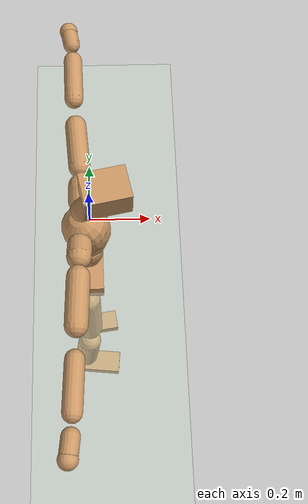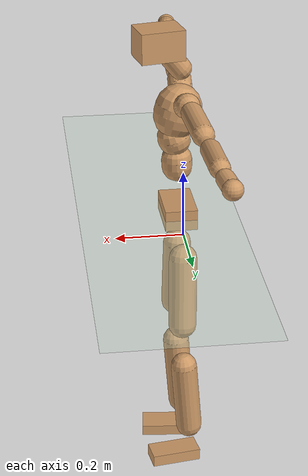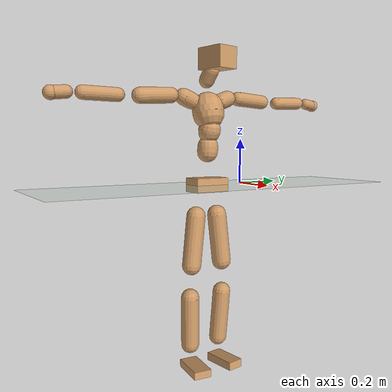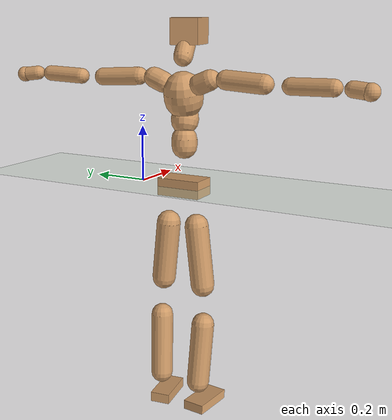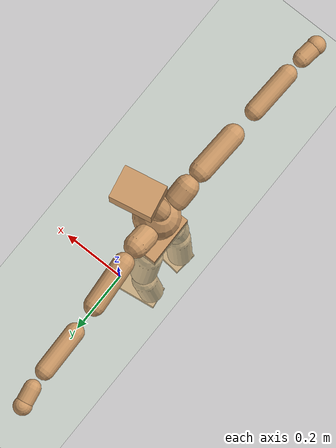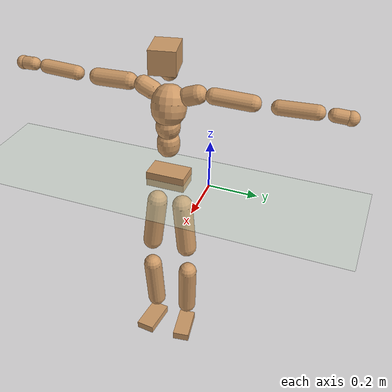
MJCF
<mujoco model="humanoid">
  <compiler coordinate="local" angle="radian"/>
  <default>
    <joint damping="0.0" armature="0.01" stiffness="0.0" limited="true"/>
    <geom conaffinity="1" condim="3" contype="7" margin="0.001" rgba="0.8 0.6 .4 1"/>
  </default>
  <asset>
    <texture type="skybox" builtin="gradient" rgb1=".4 .5 .6" rgb2="0 0 0" width="100" height="100"/>
    <texture builtin="flat" height="1278" mark="cross" markrgb="1 1 1" name="texgeom" random="0.01" rgb1="0.8 0.6 0.4" rgb2="0.8 0.6 0.4" type="cube" width="127"/>
    <texture builtin="checker" height="100" name="texplane" rgb1="0 0 0" rgb2="0.8 0.8 0.8" type="2d" width="100"/>
    <material name="MatPlane" reflectance="0.5" shininess="1" specular="1" texrepeat="60 60" texture="texplane"/>
    <material name="geom" texture="texgeom" texuniform="true"/>
  </asset>
  <worldbody>
    <light cutoff="100" diffuse="1 1 1" dir="-0 0 -1.3" directional="true" exponent="1" pos="0 0 1.3" specular=".1 .1 .1"/>
    <geom conaffinity="1" condim="3" name="floor" pos="0 0 0" rgba="0.8 0.9 0.8 1" size="100 100 .2" type="plane" material="MatPlane"/>
    <body name="Pelvis" pos="-0.0019 -0.1756 0.0084">
      <freejoint name="Pelvis"/>
      <geom type="box" contype="1" conaffinity="1" density="500" pos="-0.0055 -0.0001 -0.0109" size="0.049 0.0808 0.0315" quat="1.0000 0.0000 0.0000 0.0062" name="Pelvis"/>
      <body name="L_Hip" pos="-0.0161 0.0493 -0.0773">
        <joint name="L_Hip_x" type="hinge" pos="0 0 0" axis="1 0 0" stiffness="800" damping="80" armature="0.02" range="-180.0000 180.0000"/>
        <joint name="L_Hip_y" type="hinge" pos="0 0 0" axis="0 1 0" stiffness="800" damping="80" armature="0.02" range="-180.0000 180.0000"/>
        <joint name="L_Hip_z" type="hinge" pos="0 0 0" axis="0 0 1" stiffness="800" damping="80" armature="0.02" range="-180.0000 180.0000"/>
        <geom type="capsule" contype="1" conaffinity="1" density="500" fromto="0.0015 0.0080 -0.0731 0.0059 0.0319 -0.2923" size="0.0435" name="L_Hip"/>
        <body name="L_Knee" pos="0.0074 0.0398 -0.3654">
          <joint name="L_Knee_x" type="hinge" pos="0 0 0" axis="1 0 0" stiffness="800" damping="80" armature="0.02" range="-180.0000 180.0000"/>
          <joint name="L_Knee_y" type="hinge" pos="0 0 0" axis="0 1 0" stiffness="800" damping="80" armature="0.02" range="-180.0000 180.0000"/>
          <joint name="L_Knee_z" type="hinge" pos="0 0 0" axis="0 0 1" stiffness="800" damping="80" armature="0.02" range="-180.0000 180.0000"/>
          <geom type="capsule" contype="1" conaffinity="1" density="500" fromto="-0.0062 -0.0025 -0.0764 -0.0248 -0.0101 -0.3057" size="0.041" name="L_Knee"/>
          <body name="L_Ankle" pos="-0.0309 -0.0127 -0.3821">
            <joint name="L_Ankle_x" type="hinge" pos="0 0 0" axis="1 0 0" stiffness="800" damping="80" armature="0.02" range="-180.0000 180.0000"/>
            <joint name="L_Ankle_y" type="hinge" pos="0 0 0" axis="0 1 0" stiffness="800" damping="80" armature="0.02" range="-180.0000 180.0000"/>
            <joint name="L_Ankle_z" type="hinge" pos="0 0 0" axis="0 0 1" stiffness="800" damping="80" armature="0.02" range="-180.0000 180.0000"/>
            <geom type="box" contype="1" conaffinity="1" density="500" pos="0.0555 0.0081 -0.0264" size="0.0777 0.0369 0.0188" quat="0.9974 0.0000 0.0000 0.0723" name="L_Ankle"/>
            <body name="L_Toe" pos="0.1109 0.0162 -0.0528">
              <joint name="L_Toe_x" type="hinge" pos="0 0 0" axis="1 0 0" stiffness="500" damping="50" armature="0.02" range="-180.0000 180.0000"/>
              <joint name="L_Toe_y" type="hinge" pos="0 0 0" axis="0 1 0" stiffness="500" damping="50" armature="0.02" range="-180.0000 180.0000"/>
              <joint name="L_Toe_z" type="hinge" pos="0 0 0" axis="0 0 1" stiffness="500" damping="50" armature="0.02" range="-180.0000 180.0000"/>
              <geom type="box" contype="1" conaffinity="1" density="500" pos="0.0000 0.0000 0.0278" size="0.0007 0.0019 0.001" quat="0.9968 0.0000 0.0000 0.0797" name="L_Toe"/>
            </body>
          </body>
        </body>
      </body>
      <body name="R_Hip" pos="-0.012 -0.0478 -0.0755">
        <joint name="R_Hip_x" type="hinge" pos="0 0 0" axis="1 0 0" stiffness="800" damping="80" armature="0.02" range="-180.0000 180.0000"/>
        <joint name="R_Hip_y" type="hinge" pos="0 0 0" axis="0 1 0" stiffness="800" damping="80" armature="0.02" range="-180.0000 180.0000"/>
        <joint name="R_Hip_z" type="hinge" pos="0 0 0" axis="0 0 1" stiffness="800" damping="80" armature="0.02" range="-180.0000 180.0000"/>
        <geom type="capsule" contype="1" conaffinity="1" density="500" fromto="0.0010 -0.0084 -0.0747 0.0041 -0.0337 -0.2987" size="0.043" name="R_Hip"/>
        <body name="R_Knee" pos="0.0051 -0.0422 -0.3733">
          <joint name="R_Knee_x" type="hinge" pos="0 0 0" axis="1 0 0" stiffness="800" damping="80" armature="0.02" range="-180.0000 180.0000"/>
          <joint name="R_Knee_y" type="hinge" pos="0 0 0" axis="0 1 0" stiffness="800" damping="80" armature="0.02" range="-180.0000 180.0000"/>
          <joint name="R_Knee_z" type="hinge" pos="0 0 0" axis="0 0 1" stiffness="800" damping="80" armature="0.02" range="-180.0000 180.0000"/>
          <geom type="capsule" contype="1" conaffinity="1" density="500" fromto="-0.0058 0.0032 -0.0764 -0.0231 0.0129 -0.3055" size="0.0417" name="R_Knee"/>
          <body name="R_Ankle" pos="-0.0289 0.0161 -0.3819">
            <joint name="R_Ankle_x" type="hinge" pos="0 0 0" axis="1 0 0" stiffness="800" damping="80" armature="0.02" range="-180.0000 180.0000"/>
            <joint name="R_Ankle_y" type="hinge" pos="0 0 0" axis="0 1 0" stiffness="800" damping="80" armature="0.02" range="-180.0000 180.0000"/>
            <joint name="R_Ankle_z" type="hinge" pos="0 0 0" axis="0 0 1" stiffness="800" damping="80" armature="0.02" range="-180.0000 180.0000"/>
            <geom type="box" contype="1" conaffinity="1" density="500" pos="0.0563 -0.0056 -0.0214" size="0.0799 0.0409 0.0174" quat="0.9988 0.0000 0.0000 -0.0494" name="R_Ankle"/>
            <body name="R_Toe" pos="0.1127 -0.0112 -0.0429">
              <joint name="R_Toe_x" type="hinge" pos="0 0 0" axis="1 0 0" stiffness="500" damping="50" armature="0.02" range="-180.0000 180.0000"/>
              <joint name="R_Toe_y" type="hinge" pos="0 0 0" axis="0 1 0" stiffness="500" damping="50" armature="0.02" range="-180.0000 180.0000"/>
              <joint name="R_Toe_z" type="hinge" pos="0 0 0" axis="0 0 1" stiffness="500" damping="50" armature="0.02" range="-180.0000 180.0000"/>
              <geom type="box" contype="1" conaffinity="1" density="500" pos="0.0000 0.0000 0.0232" size="0.0008 0.002 0.001" quat="0.9992 0.0000 0.0000 -0.0399" name="R_Toe"/>
            </body>
          </body>
        </body>
      </body>
      <body name="Torso" pos="-0.0048 -0.0018 0.0875">
        <joint name="Torso_x" type="hinge" pos="0 0 0" axis="1 0 0" stiffness="1000" damping="100" armature="0.02" range="-180.0000 180.0000"/>
        <joint name="Torso_y" type="hinge" pos="0 0 0" axis="0 1 0" stiffness="1000" damping="100" armature="0.02" range="-180.0000 180.0000"/>
        <joint name="Torso_z" type="hinge" pos="0 0 0" axis="0 0 1" stiffness="1000" damping="100" armature="0.02" range="-180.0000 180.0000"/>
        <geom type="capsule" contype="1" conaffinity="1" density="500" fromto="0.0033 0.0019 0.0715 0.0022 0.0012 0.0477" size="0.0461" name="Torso"/>
        <body name="Spine" pos="0.0056 0.0031 0.1192">
          <joint name="Spine_x" type="hinge" pos="0 0 0" axis="1 0 0" stiffness="1000" damping="100" armature="0.02" range="-180.0000 180.0000"/>
          <joint name="Spine_y" type="hinge" pos="0 0 0" axis="0 1 0" stiffness="1000" damping="100" armature="0.02" range="-180.0000 180.0000"/>
          <joint name="Spine_z" type="hinge" pos="0 0 0" axis="0 0 1" stiffness="1000" damping="100" armature="0.02" range="-180.0000 180.0000"/>
          <geom type="capsule" contype="1" conaffinity="1" density="500" fromto="0.0076 0.0016 0.0259 0.0050 0.0010 0.0173" size="0.0492" name="Spine"/>
          <body name="Chest" pos="0.0126 0.0026 0.0432">
            <joint name="Chest_x" type="hinge" pos="0 0 0" axis="1 0 0" stiffness="1000" damping="100" armature="0.02" range="-180.0000 180.0000"/>
            <joint name="Chest_y" type="hinge" pos="0 0 0" axis="0 1 0" stiffness="1000" damping="100" armature="0.02" range="-180.0000 180.0000"/>
            <joint name="Chest_z" type="hinge" pos="0 0 0" axis="0 0 1" stiffness="1000" damping="100" armature="0.02" range="-180.0000 180.0000"/>
            <geom type="capsule" contype="1" conaffinity="1" density="500" fromto="-0.0205 -0.0018 0.0762 -0.0137 -0.0012 0.0508" size="0.0697" name="Chest"/>
            <body name="Neck" pos="-0.035 -0.0053 0.1821">
              <joint name="Neck_x" type="hinge" pos="0 0 0" axis="1 0 0" stiffness="500" damping="50" armature="0.02" range="-180.0000 180.0000"/>
              <joint name="Neck_y" type="hinge" pos="0 0 0" axis="0 1 0" stiffness="500" damping="50" armature="0.02" range="-180.0000 180.0000"/>
              <joint name="Neck_z" type="hinge" pos="0 0 0" axis="0 0 1" stiffness="500" damping="50" armature="0.02" range="-180.0000 180.0000"/>
              <geom type="capsule" contype="1" conaffinity="1" density="500" fromto="0.0099 0.0017 0.0128 0.0395 0.0067 0.0513" size="0.0336" name="Neck"/>
              <body name="Head" pos="0.0493 0.0084 0.0642">
                <joint name="Head_x" type="hinge" pos="0 0 0" axis="1 0 0" stiffness="500" damping="50" armature="0.02" range="-180.0000 180.0000"/>
                <joint name="Head_y" type="hinge" pos="0 0 0" axis="0 1 0" stiffness="500" damping="50" armature="0.02" range="-180.0000 180.0000"/>
                <joint name="Head_z" type="hinge" pos="0 0 0" axis="0 0 1" stiffness="500" damping="50" armature="0.02" range="-180.0000 180.0000"/>
                <geom type="box" contype="1" conaffinity="1" density="500" pos="0.0257 0.0052 0.0331" size="0.0662 0.0502 0.0455" quat="0.9950 0.0000 0.0000 0.0995" name="Head"/>
              </body>
            </body>
            <body name="L_Thorax" pos="-0.0326 0.0547 0.0998">
              <joint name="L_Thorax_x" type="hinge" pos="0 0 0" axis="1 0 0" stiffness="500" damping="50" armature="0.02" range="-180.0000 180.0000"/>
              <joint name="L_Thorax_y" type="hinge" pos="0 0 0" axis="0 1 0" stiffness="500" damping="50" armature="0.02" range="-180.0000 180.0000"/>
              <joint name="L_Thorax_z" type="hinge" pos="0 0 0" axis="0 0 1" stiffness="500" damping="50" armature="0.02" range="-180.0000 180.0000"/>
              <geom type="capsule" contype="1" conaffinity="1" density="500" fromto="0.0004 0.0134 0.0053 0.0015 0.0537 0.0212" size="0.0367" name="L_Thorax"/>
              <body name="L_Shoulder" pos="0.0019 0.0671 0.0265">
                <joint name="L_Shoulder_x" type="hinge" pos="0 0 0" axis="1 0 0" stiffness="500" damping="50" armature="0.02" range="-720.0000 720.0000"/>
                <joint name="L_Shoulder_y" type="hinge" pos="0 0 0" axis="0 1 0" stiffness="500" damping="50" armature="0.02" range="-720.0000 720.0000"/>
                <joint name="L_Shoulder_z" type="hinge" pos="0 0 0" axis="0 0 1" stiffness="500" damping="50" armature="0.02" range="-720.0000 720.0000"/>
                <geom type="capsule" contype="1" conaffinity="1" density="500" fromto="-0.0036 0.0485 -0.0025 -0.0145 0.1940 -0.0102" size="0.0319" name="L_Shoulder"/>
                <body name="L_Elbow" pos="-0.0181 0.2425 -0.0127">
                  <joint name="L_Elbow_x" type="hinge" pos="0 0 0" axis="1 0 0" stiffness="500" damping="50" armature="0.02" range="-720.0000 720.0000"/>
                  <joint name="L_Elbow_y" type="hinge" pos="0 0 0" axis="0 1 0" stiffness="500" damping="50" armature="0.02" range="-720.0000 720.0000"/>
                  <joint name="L_Elbow_z" type="hinge" pos="0 0 0" axis="0 0 1" stiffness="500" damping="50" armature="0.02" range="-720.0000 720.0000"/>
                  <geom type="capsule" contype="1" conaffinity="1" density="500" fromto="-0.0011 0.0460 0.0016 -0.0042 0.1839 0.0064" size="0.0284" name="L_Elbow"/>
                  <body name="L_Wrist" pos="-0.0053 0.2299 0.008">
                    <joint name="L_Wrist_x" type="hinge" pos="0 0 0" axis="1 0 0" stiffness="300" damping="30" armature="0.02" range="-180.0000 180.0000"/>
                    <joint name="L_Wrist_y" type="hinge" pos="0 0 0" axis="0 1 0" stiffness="300" damping="30" armature="0.02" range="-180.0000 180.0000"/>
                    <joint name="L_Wrist_z" type="hinge" pos="0 0 0" axis="0 0 1" stiffness="300" damping="30" armature="0.02" range="-180.0000 180.0000"/>
                    <geom type="capsule" contype="1" conaffinity="1" density="500" fromto="-0.0025 0.0141 -0.0018 -0.0099 0.0564 -0.0070" size="0.0257" name="L_Wrist"/>
                    <body name="L_Hand" pos="-0.0124 0.0705 -0.0088">
                      <joint name="L_Hand_x" type="hinge" pos="0 0 0" axis="1 0 0" stiffness="300" damping="30" armature="0.02" range="-180.0000 180.0000"/>
                      <joint name="L_Hand_y" type="hinge" pos="0 0 0" axis="0 1 0" stiffness="300" damping="30" armature="0.02" range="-180.0000 180.0000"/>
                      <joint name="L_Hand_z" type="hinge" pos="0 0 0" axis="0 0 1" stiffness="300" damping="30" armature="0.02" range="-180.0000 180.0000"/>
                      <geom type="sphere" contype="1" conaffinity="1" density="500" size="0.0283" pos="0.0000 0.0000 0.0000" name="L_Hand"/>
                    </body>
                  </body>
                </body>
              </body>
            </body>
            <body name="R_Thorax" pos="-0.0348 -0.0585 0.0989">
              <joint name="R_Thorax_x" type="hinge" pos="0 0 0" axis="1 0 0" stiffness="500" damping="50" armature="0.02" range="-180.0000 180.0000"/>
              <joint name="R_Thorax_y" type="hinge" pos="0 0 0" axis="0 1 0" stiffness="500" damping="50" armature="0.02" range="-180.0000 180.0000"/>
              <joint name="R_Thorax_z" type="hinge" pos="0 0 0" axis="0 0 1" stiffness="500" damping="50" armature="0.02" range="-180.0000 180.0000"/>
              <geom type="capsule" contype="1" conaffinity="1" density="500" fromto="-0.0005 -0.0140 0.0056 -0.0022 -0.0561 0.0226" size="0.0362" name="R_Thorax"/>
              <body name="R_Shoulder" pos="-0.0027 -0.0702 0.0282">
                <joint name="R_Shoulder_x" type="hinge" pos="0 0 0" axis="1 0 0" stiffness="500" damping="50" armature="0.02" range="-720.0000 720.0000"/>
                <joint name="R_Shoulder_y" type="hinge" pos="0 0 0" axis="0 1 0" stiffness="500" damping="50" armature="0.02" range="-720.0000 720.0000"/>
                <joint name="R_Shoulder_z" type="hinge" pos="0 0 0" axis="0 0 1" stiffness="500" damping="50" armature="0.02" range="-720.0000 720.0000"/>
                <geom type="capsule" contype="1" conaffinity="1" density="500" fromto="-0.0021 -0.0466 -0.0024 -0.0084 -0.1866 -0.0097" size="0.034" name="R_Shoulder"/>
                <body name="R_Elbow" pos="-0.0105 -0.2332 -0.0121">
                  <joint name="R_Elbow_x" type="hinge" pos="0 0 0" axis="1 0 0" stiffness="500" damping="50" armature="0.02" range="-720.0000 720.0000"/>
                  <joint name="R_Elbow_y" type="hinge" pos="0 0 0" axis="0 1 0" stiffness="500" damping="50" armature="0.02" range="-720.0000 720.0000"/>
                  <joint name="R_Elbow_z" type="hinge" pos="0 0 0" axis="0 0 1" stiffness="500" damping="50" armature="0.02" range="-720.0000 720.0000"/>
                  <geom type="capsule" contype="1" conaffinity="1" density="500" fromto="-0.0023 -0.0478 0.0009 -0.0093 -0.1914 0.0034" size="0.0288" name="R_Elbow"/>
                  <body name="R_Wrist" pos="-0.0117 -0.2392 0.0043">
                    <joint name="R_Wrist_x" type="hinge" pos="0 0 0" axis="1 0 0" stiffness="300" damping="30" armature="0.02" range="-180.0000 180.0000"/>
                    <joint name="R_Wrist_y" type="hinge" pos="0 0 0" axis="0 1 0" stiffness="300" damping="30" armature="0.02" range="-180.0000 180.0000"/>
                    <joint name="R_Wrist_z" type="hinge" pos="0 0 0" axis="0 0 1" stiffness="300" damping="30" armature="0.02" range="-180.0000 180.0000"/>
                    <geom type="capsule" contype="1" conaffinity="1" density="500" fromto="-0.0018 -0.0144 -0.0013 -0.0073 -0.0578 -0.0052" size="0.0267" name="R_Wrist"/>
                    <body name="R_Hand" pos="-0.0091 -0.0722 -0.0065">
                      <joint name="R_Hand_x" type="hinge" pos="0 0 0" axis="1 0 0" stiffness="300" damping="30" armature="0.02" range="-180.0000 180.0000"/>
                      <joint name="R_Hand_y" type="hinge" pos="0 0 0" axis="0 1 0" stiffness="300" damping="30" armature="0.02" range="-180.0000 180.0000"/>
                      <joint name="R_Hand_z" type="hinge" pos="0 0 0" axis="0 0 1" stiffness="300" damping="30" armature="0.02" range="-180.0000 180.0000"/>
                      <geom type="sphere" contype="1" conaffinity="1" density="500" size="0.0288" pos="0.0000 0.0000 0.0000" name="R_Hand"/>
                    </body>
                  </body>
                </body>
              </body>
            </body>
          </body>
        </body>
      </body>
    </body>
  </worldbody>
  <actuator>
    <motor name="L_Hip_x" joint="L_Hip_x" gear="500"/>
    <motor name="L_Hip_y" joint="L_Hip_y" gear="500"/>
    <motor name="L_Hip_z" joint="L_Hip_z" gear="500"/>
    <motor name="L_Knee_x" joint="L_Knee_x" gear="500"/>
    <motor name="L_Knee_y" joint="L_Knee_y" gear="500"/>
    <motor name="L_Knee_z" joint="L_Knee_z" gear="500"/>
    <motor name="L_Ankle_x" joint="L_Ankle_x" gear="500"/>
    <motor name="L_Ankle_y" joint="L_Ankle_y" gear="500"/>
    <motor name="L_Ankle_z" joint="L_Ankle_z" gear="500"/>
    <motor name="L_Toe_x" joint="L_Toe_x" gear="500"/>
    <motor name="L_Toe_y" joint="L_Toe_y" gear="500"/>
    <motor name="L_Toe_z" joint="L_Toe_z" gear="500"/>
    <motor name="R_Hip_x" joint="R_Hip_x" gear="500"/>
    <motor name="R_Hip_y" joint="R_Hip_y" gear="500"/>
    <motor name="R_Hip_z" joint="R_Hip_z" gear="500"/>
    <motor name="R_Knee_x" joint="R_Knee_x" gear="500"/>
    <motor name="R_Knee_y" joint="R_Knee_y" gear="500"/>
    <motor name="R_Knee_z" joint="R_Knee_z" gear="500"/>
    <motor name="R_Ankle_x" joint="R_Ankle_x" gear="500"/>
    <motor name="R_Ankle_y" joint="R_Ankle_y" gear="500"/>
    <motor name="R_Ankle_z" joint="R_Ankle_z" gear="500"/>
    <motor name="R_Toe_x" joint="R_Toe_x" gear="500"/>
    <motor name="R_Toe_y" joint="R_Toe_y" gear="500"/>
    <motor name="R_Toe_z" joint="R_Toe_z" gear="500"/>
    <motor name="Torso_x" joint="Torso_x" gear="500"/>
    <motor name="Torso_y" joint="Torso_y" gear="500"/>
    <motor name="Torso_z" joint="Torso_z" gear="500"/>
    <motor name="Spine_x" joint="Spine_x" gear="500"/>
    <motor name="Spine_y" joint="Spine_y" gear="500"/>
    <motor name="Spine_z" joint="Spine_z" gear="500"/>
    <motor name="Chest_x" joint="Chest_x" gear="500"/>
    <motor name="Chest_y" joint="Chest_y" gear="500"/>
    <motor name="Chest_z" joint="Chest_z" gear="500"/>
    <motor name="Neck_x" joint="Neck_x" gear="500"/>
    <motor name="Neck_y" joint="Neck_y" gear="500"/>
    <motor name="Neck_z" joint="Neck_z" gear="500"/>
    <motor name="Head_x" joint="Head_x" gear="500"/>
    <motor name="Head_y" joint="Head_y" gear="500"/>
    <motor name="Head_z" joint="Head_z" gear="500"/>
    <motor name="L_Thorax_x" joint="L_Thorax_x" gear="500"/>
    <motor name="L_Thorax_y" joint="L_Thorax_y" gear="500"/>
    <motor name="L_Thorax_z" joint="L_Thorax_z" gear="500"/>
    <motor name="L_Shoulder_x" joint="L_Shoulder_x" gear="500"/>
    <motor name="L_Shoulder_y" joint="L_Shoulder_y" gear="500"/>
    <motor name="L_Shoulder_z" joint="L_Shoulder_z" gear="500"/>
    <motor name="L_Elbow_x" joint="L_Elbow_x" gear="500"/>
    <motor name="L_Elbow_y" joint="L_Elbow_y" gear="500"/>
    <motor name="L_Elbow_z" joint="L_Elbow_z" gear="500"/>
    <motor name="L_Wrist_x" joint="L_Wrist_x" gear="500"/>
    <motor name="L_Wrist_y" joint="L_Wrist_y" gear="500"/>
    <motor name="L_Wrist_z" joint="L_Wrist_z" gear="500"/>
    <motor name="L_Hand_x" joint="L_Hand_x" gear="500"/>
    <motor name="L_Hand_y" joint="L_Hand_y" gear="500"/>
    <motor name="L_Hand_z" joint="L_Hand_z" gear="500"/>
    <motor name="R_Thorax_x" joint="R_Thorax_x" gear="500"/>
    <motor name="R_Thorax_y" joint="R_Thorax_y" gear="500"/>
    <motor name="R_Thorax_z" joint="R_Thorax_z" gear="500"/>
    <motor name="R_Shoulder_x" joint="R_Shoulder_x" gear="500"/>
    <motor name="R_Shoulder_y" joint="R_Shoulder_y" gear="500"/>
    <motor name="R_Shoulder_z" joint="R_Shoulder_z" gear="500"/>
    <motor name="R_Elbow_x" joint="R_Elbow_x" gear="500"/>
    <motor name="R_Elbow_y" joint="R_Elbow_y" gear="500"/>
    <motor name="R_Elbow_z" joint="R_Elbow_z" gear="500"/>
    <motor name="R_Wrist_x" joint="R_Wrist_x" gear="500"/>
    <motor name="R_Wrist_y" joint="R_Wrist_y" gear="500"/>
    <motor name="R_Wrist_z" joint="R_Wrist_z" gear="500"/>
    <motor name="R_Hand_x" joint="R_Hand_x" gear="500"/>
    <motor name="R_Hand_y" joint="R_Hand_y" gear="500"/>
    <motor name="R_Hand_z" joint="R_Hand_z" gear="500"/>
  </actuator>
  <contact>
    <exclude body1="Torso" body2="Chest"/>
    <exclude body1="Head" body2="Chest"/>
    <exclude body1="R_Knee" body2="R_Toe"/>
    <exclude body1="R_Knee" body2="L_Ankle"/>
    <exclude body1="R_Knee" body2="L_Toe"/>
    <exclude body1="L_Knee" body2="L_Toe"/>
    <exclude body1="L_Knee" body2="R_Ankle"/>
    <exclude body1="L_Knee" body2="R_Toe"/>
    <exclude body1="L_Shoulder" body2="Chest"/>
    <exclude body1="R_Shoulder" body2="Chest"/>
  </contact>
  <sensor/>
  <size njmax="700" nconmax="700"/>
</mujoco>
